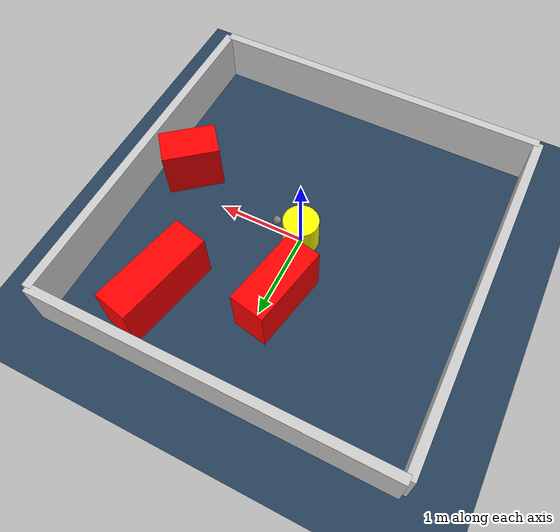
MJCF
<?xml version="1.0" ?>
<mujoco model="generated_environment">
  <option timestep="0.01" integrator="RK4" cone="elliptic"/>
  <default>
    <geom density="1"/>
  </default>
  <asset>
    <texture builtin="gradient" height="3072" rgb1="0.3 0.5 0.7" rgb2="0 0 0" type="skybox" width="512"/>
    <texture builtin="checker" height="300" mark="edge" markrgb="0.8 0.8 0.8" name="groundplane" rgb1="0.2 0.3 0.4" rgb2="0.1 0.2 0.3" type="2d" width="300"/>
    <material name="groundplane" reflectance="0.2" texrepeat="5 5" texture="groundplane" texuniform="true"/>
    <material name="robot" rgba="0.0 1.0 0.0 1"/>
  </asset>
  <worldbody>
    <light dir="0 0 -1" directional="true" pos="0 0 1.5"/>
    <geom condim="4" friction="1.0 0.005 0.001" material="groundplane" name="floor" size="0 0 0.05" type="plane"/>
    <body name="walls">
      <geom name="wall_1" condim="4" pos="-2.0 0.0 0.3" rgba="0.800000011920929 0.800000011920929 0.800000011920929 1.0" size="0.05 2.0 0.3" type="box"/>
      <geom name="wall_2" condim="4" pos="2.0 0.0 0.3" rgba="0.800000011920929 0.800000011920929 0.800000011920929 1.0" size="0.05 2.0 0.3" type="box"/>
      <geom name="wall_3" condim="4" pos="0.0 -2.0 0.3" rgba="0.800000011920929 0.800000011920929 0.800000011920929 1.0" size="2.0 0.05 0.3" type="box"/>
      <geom name="wall_4" condim="4" pos="0.0 2.0 0.3" rgba="0.800000011920929 0.800000011920929 0.800000011920929 1.0" size="2.0 0.05 0.3" type="box"/>
    </body>
    <body name="robot">
      <joint name="joint_x" type="slide" pos="0 0 0" axis="1 0 0"/>
      <joint name="joint_y" type="slide" pos="0 0 0" axis="0 1 0"/>
      <geom name="robot" type="sphere" pos="0.3 0.0 0.2" size="0.05" mass="5." friction="1.0 0.005 0.0001" condim="4" rgba="0.5 0.5 0.5 1.0"/>
      <site name="sensor_ball"/>
    </body>
    <body name="obstacle_movable_1">
      <geom name="obstacle_movable_1" condim="4" pos="0.0 0.0 0.2" euler="0 0 0.0" friction="1.0 0.005 0.001" rgba="1.0 1.0 0.0 1.0" size="0.2 0.2 0.0" type="cylinder" mass="0.1"/>
      <joint type="free"/>
    </body>
    <body name="obstacle_2_static">
      <geom name="obstacle_2_static" condim="4" pos="-0.1193575217958649 0.8023429905519188 0.3" euler="0 0 258.6213802430928" friction="1.0 0.005 0.001" rgba="1 0 0 1" size="0.45421593660250625 0.2 0.3" type="box"/>
    </body>
    <body name="obstacle_3_static">
      <geom name="obstacle_3_static" condim="4" pos="1.5469014055765928 -0.2620640176567419 0.3" euler="0 0 39.05507751297194" friction="1.0 0.005 0.001" rgba="1 0 0 1" size="0.32199118590009407 0.2 0.3" type="box"/>
    </body>
    <body name="obstacle_4_static">
      <geom name="obstacle_4_static" condim="4" pos="1.0299300547872932 1.2713529540873763 0.3" euler="0 0 77.27620311296134" friction="1.0 0.005 0.001" rgba="1 0 0 1" size="0.5552541110753263 0.2 0.3" type="box"/>
    </body>
  </worldbody>
  <actuator>
    <motor name="actuator_x" joint="joint_x" gear="1" ctrlrange="-1 1"/>
    <motor name="actuator_y" joint="joint_y" gear="1" ctrlrange="-1 1"/>
  </actuator>
</mujoco>
